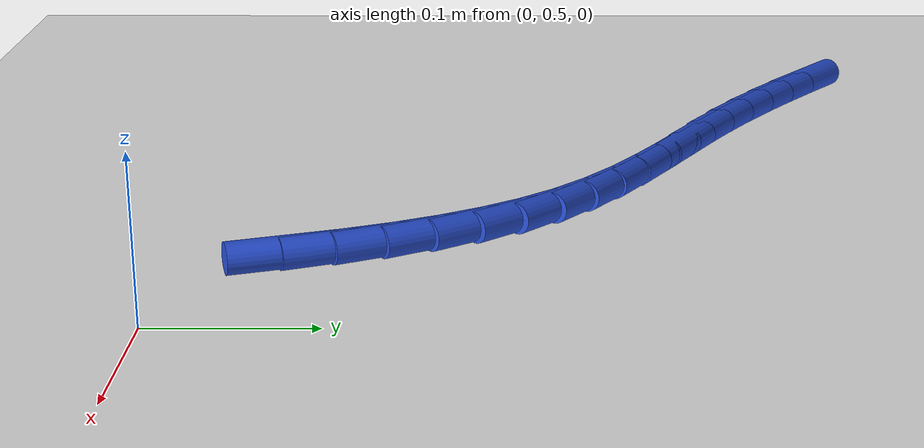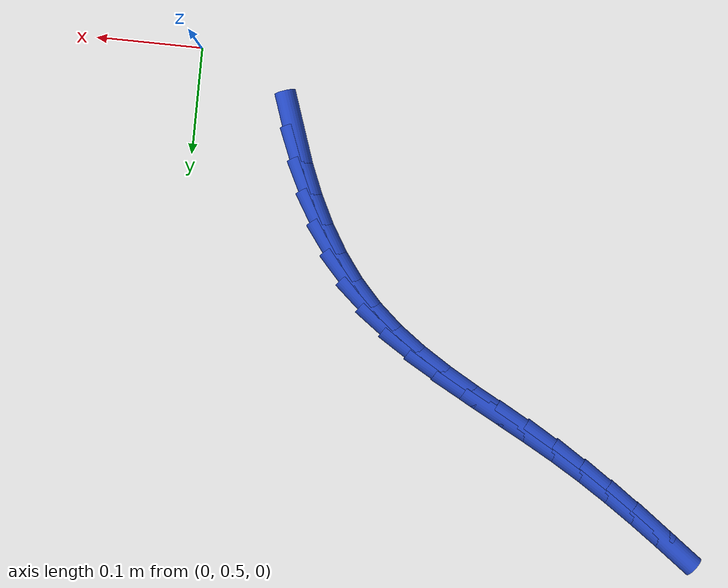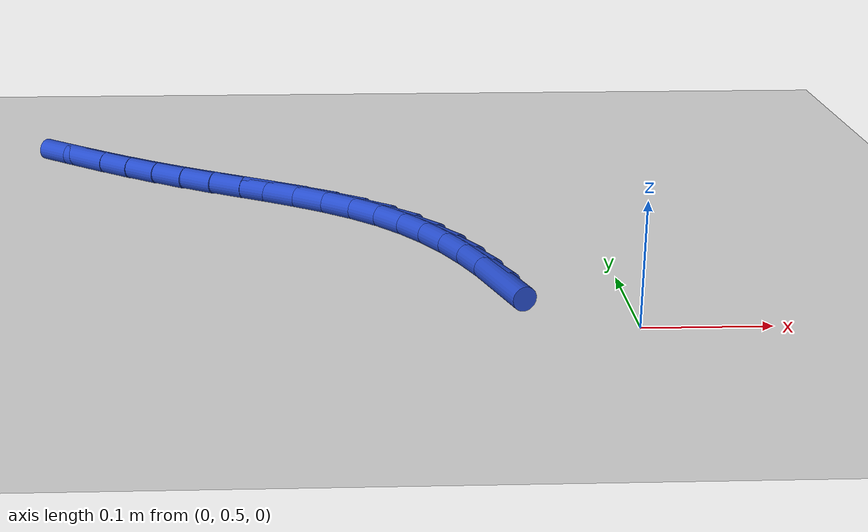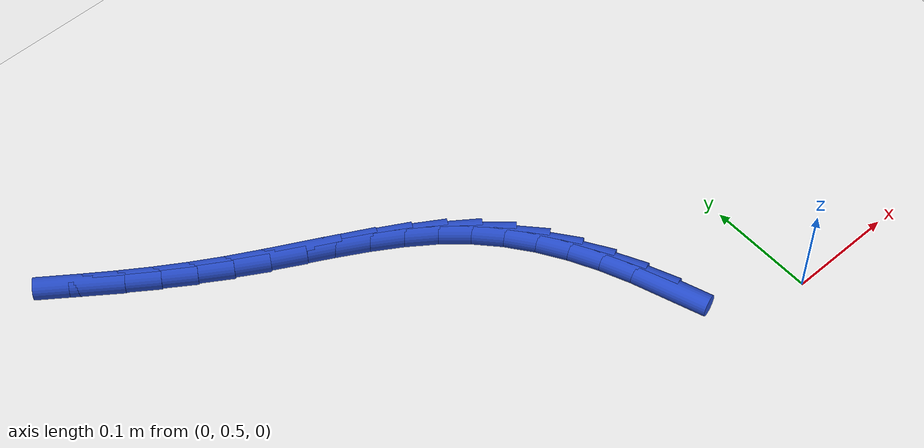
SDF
<sdf version="1.6">
 <world name="default">
  <model name="ground_plane">
   <static>1</static>
   <link name="link">
    <collision name="collision">
     <geometry><plane><normal>0 0 1</normal><size>100 100</size></plane></geometry>
     <surface><friction><ode><mu>100</mu><mu2>50</mu2></ode></friction></surface>
    </collision>
    <visual name="visual">
     <cast_shadows>0</cast_shadows>
     <geometry><plane><normal>0 0 1</normal><size>100 100</size></plane></geometry>
     <material>
      <script><uri>file://media/materials/scripts/gazebo.material</uri><name>Gazebo/WhiteGlow</name></script>
     </material>
    </visual>
   </link>
  </model>
  <model name="line">
   <link name="link_18">
    <pose>-0.09548043678156241 0.5722486128463496 0.01 0 1.57 -1.237949160713383</pose>
    <collision name="collision">
     <geometry><cylinder><radius>0.01</radius><length>0.08</length></cylinder></geometry>
    </collision>
    <visual name="visual">
     <material>
      <script><name>Gazebo/Blue</name><uri>file://media/materials/scripts/gazebo.material</uri></script>
     </material>
     <geometry><cylinder><radius>0.01</radius><length>0.08</length></cylinder></geometry>
    </visual>
   </link>
   <link name="link_19">
    <pose>-0.10576190836722948 0.6019888453496396 0.01 0 1.57 -1.1779108470160669</pose>
    <collision name="collision">
     <geometry><cylinder><radius>0.01</radius><length>0.08</length></cylinder></geometry>
    </collision>
    <visual name="visual">
     <material>
      <script><name>Gazebo/Blue</name><uri>file://media/materials/scripts/gazebo.material</uri></script>
     </material>
     <geometry><cylinder><radius>0.01</radius><length>0.08</length></cylinder></geometry>
    </visual>
   </link>
   <link name="link_20">
    <pose>-0.11758431835681268 0.6305156270238166 0.01 0 1.57 -1.107418735966026</pose>
    <collision name="collision">
     <geometry><cylinder><radius>0.01</radius><length>0.08</length></cylinder></geometry>
    </collision>
    <visual name="visual">
     <material>
      <script><name>Gazebo/Blue</name><uri>file://media/materials/scripts/gazebo.material</uri></script>
     </material>
     <geometry><cylinder><radius>0.01</radius><length>0.08</length></cylinder></geometry>
    </visual>
   </link>
   <link name="link_21">
    <pose>-0.13114258888899485 0.6576504828763958 0.01 0 1.57 -1.0260627595932994</pose>
    <collision name="collision">
     <geometry><cylinder><radius>0.01</radius><length>0.08</length></cylinder></geometry>
    </collision>
    <visual name="visual">
     <material>
      <script><name>Gazebo/Blue</name><uri>file://media/materials/scripts/gazebo.material</uri></script>
     </material>
     <geometry><cylinder><radius>0.01</radius><length>0.08</length></cylinder></geometry>
    </visual>
   </link>
   <link name="link_22">
    <pose>-0.14663164210245885 0.6832149379148926 0.01 0 1.57 -0.9339640023764577</pose>
    <collision name="collision">
     <geometry><cylinder><radius>0.01</radius><length>0.08</length></cylinder></geometry>
    </collision>
    <visual name="visual">
     <material>
      <script><name>Gazebo/Blue</name><uri>file://media/materials/scripts/gazebo.material</uri></script>
     </material>
     <geometry><cylinder><radius>0.01</radius><length>0.08</length></cylinder></geometry>
    </visual>
   </link>
   <link name="link_23">
    <pose>-0.1642464001358875 0.7070305171468226 0.01 0 1.57 -0.8320566405855585</pose>
    <collision name="collision">
     <geometry><cylinder><radius>0.01</radius><length>0.08</length></cylinder></geometry>
    </collision>
    <visual name="visual">
     <material>
      <script><name>Gazebo/Blue</name><uri>file://media/materials/scripts/gazebo.material</uri></script>
     </material>
     <geometry><cylinder><radius>0.01</radius><length>0.08</length></cylinder></geometry>
    </visual>
   </link>
   <link name="link_24">
    <pose>-0.18418178512796354 0.7289187455797006 0.01 0 1.57 -0.7244999463171347</pose>
    <collision name="collision">
     <geometry><cylinder><radius>0.01</radius><length>0.08</length></cylinder></geometry>
    </collision>
    <visual name="visual">
     <material>
      <script><name>Gazebo/Blue</name><uri>file://media/materials/scripts/gazebo.material</uri></script>
     </material>
     <geometry><cylinder><radius>0.01</radius><length>0.08</length></cylinder></geometry>
    </visual>
   </link>
   <link name="link_25">
    <pose>-0.20658356720739174 0.7487456897266181 0.01 0 1.57 -0.6322358763020309</pose>
    <collision name="collision">
     <geometry><cylinder><radius>0.01</radius><length>0.08</length></cylinder></geometry>
    </collision>
    <visual name="visual">
     <material>
      <script><name>Gazebo/Blue</name><uri>file://media/materials/scripts/gazebo.material</uri></script>
     </material>
     <geometry><cylinder><radius>0.01</radius><length>0.08</length></cylinder></geometry>
    </visual>
   </link>
   <link name="link_26">
    <pose>-0.23117517323548958 0.7667601431754679 0.01 0 1.57 -0.5644500898084038</pose>
    <collision name="collision">
     <geometry><cylinder><radius>0.01</radius><length>0.08</length></cylinder></geometry>
    </collision>
    <visual name="visual">
     <material>
      <script><name>Gazebo/Blue</name><uri>file://media/materials/scripts/gazebo.material</uri></script>
     </material>
     <geometry><cylinder><radius>0.01</radius><length>0.08</length></cylinder></geometry>
    </visual>
   </link>
   <link name="link_27">
    <pose>-0.25746486162807614 0.7834058849586697 0.01 0 1.57 -0.519456450435166</pose>
    <collision name="collision">
     <geometry><cylinder><radius>0.01</radius><length>0.08</length></cylinder></geometry>
    </collision>
    <visual name="visual">
     <material>
      <script><name>Gazebo/Blue</name><uri>file://media/materials/scripts/gazebo.material</uri></script>
     </material>
     <geometry><cylinder><radius>0.01</radius><length>0.08</length></cylinder></geometry>
    </visual>
   </link>
   <link name="link_28">
    <pose>-0.28495917986475866 0.7991282445574422 0.01 0 1.57 -0.4954993511850431</pose>
    <collision name="collision">
     <geometry><cylinder><radius>0.01</radius><length>0.08</length></cylinder></geometry>
    </collision>
    <visual name="visual">
     <material>
      <script><name>Gazebo/Blue</name><uri>file://media/materials/scripts/gazebo.material</uri></script>
     </material>
     <geometry><cylinder><radius>0.01</radius><length>0.08</length></cylinder></geometry>
    </visual>
   </link>
   <link name="link_29">
    <pose>-0.3131646754251447 0.8143725514530047 0.01 0 1.57 -0.49139515971351777</pose>
    <collision name="collision">
     <geometry><cylinder><radius>0.01</radius><length>0.08</length></cylinder></geometry>
    </collision>
    <visual name="visual">
     <material>
      <script><name>Gazebo/Blue</name><uri>file://media/materials/scripts/gazebo.material</uri></script>
     </material>
     <geometry><cylinder><radius>0.01</radius><length>0.08</length></cylinder></geometry>
    </visual>
   </link>
   <link name="link_30">
    <pose>-0.3415878957888413 0.8295841351265755 0.01 0 1.57 -0.5067371997710283</pose>
    <collision name="collision">
     <geometry><cylinder><radius>0.01</radius><length>0.08</length></cylinder></geometry>
    </collision>
    <visual name="visual">
     <material>
      <script><name>Gazebo/Blue</name><uri>file://media/materials/scripts/gazebo.material</uri></script>
     </material>
     <geometry><cylinder><radius>0.01</radius><length>0.08</length></cylinder></geometry>
    </visual>
   </link>
   <link name="link_31">
    <pose>-0.3697353884354559 0.8452083250593737 0.01 0 1.57 -0.5392300308553891</pose>
    <collision name="collision">
     <geometry><cylinder><radius>0.01</radius><length>0.08</length></cylinder></geometry>
    </collision>
    <visual name="visual">
     <material>
      <script><name>Gazebo/Blue</name><uri>file://media/materials/scripts/gazebo.material</uri></script>
     </material>
     <geometry><cylinder><radius>0.01</radius><length>0.08</length></cylinder></geometry>
    </visual>
   </link>
   <link name="link_32">
    <pose>-0.39717732171991554 0.861629124445607 0.01 0 1.57 -0.5725438408554816</pose>
    <collision name="collision">
     <geometry><cylinder><radius>0.01</radius><length>0.08</length></cylinder></geometry>
    </collision>
    <visual name="visual">
     <material>
      <script><name>Gazebo/Blue</name><uri>file://media/materials/scripts/gazebo.material</uri></script>
     </material>
     <geometry><cylinder><radius>0.01</radius><length>0.08</length></cylinder></geometry>
    </visual>
   </link>
   <link name="link_33">
    <pose>-0.42388497039961287 0.8788438966189673 0.01 0 1.57 -0.5999865828646224</pose>
    <collision name="collision">
     <geometry><cylinder><radius>0.01</radius><length>0.08</length></cylinder></geometry>
    </collision>
    <visual name="visual">
     <material>
      <script><name>Gazebo/Blue</name><uri>file://media/materials/scripts/gazebo.material</uri></script>
     </material>
     <geometry><cylinder><radius>0.01</radius><length>0.08</length></cylinder></geometry>
    </visual>
   </link>
   <link name="link_34">
    <pose>-0.4499855127751435 0.8966997242798087 0.01 0 1.57 -0.6213584745861429</pose>
    <collision name="collision">
     <geometry><cylinder><radius>0.01</radius><length>0.08</length></cylinder></geometry>
    </collision>
    <visual name="visual">
     <material>
      <script><name>Gazebo/Blue</name><uri>file://media/materials/scripts/gazebo.material</uri></script>
     </material>
     <geometry><cylinder><radius>0.01</radius><length>0.08</length></cylinder></geometry>
    </visual>
   </link>
   <link name="link_35">
    <pose>-0.47560647454656535 0.9150433552585392 0.01 0 1.57 -0.6365380052178342</pose>
    <collision name="collision">
     <geometry><cylinder><radius>0.01</radius><length>0.08</length></cylinder></geometry>
    </collision>
    <visual name="visual">
     <material>
      <script><name>Gazebo/Blue</name><uri>file://media/materials/scripts/gazebo.material</uri></script>
     </material>
     <geometry><cylinder><radius>0.01</radius><length>0.08</length></cylinder></geometry>
    </visual>
   </link>
  </model>
 </world>
</sdf>
